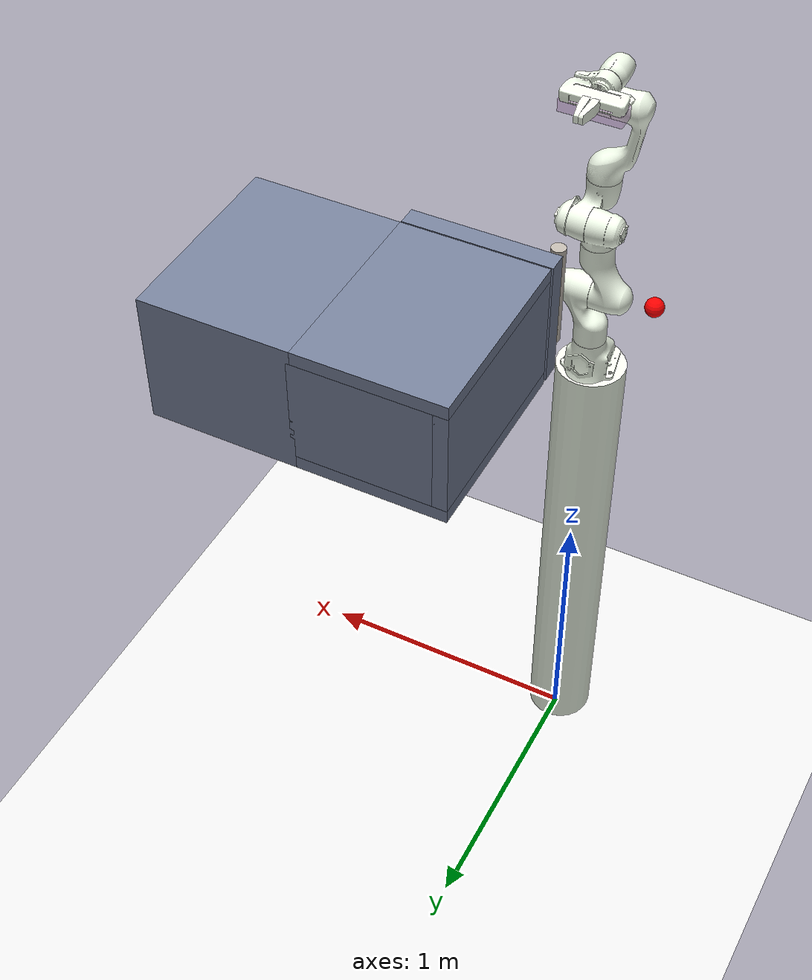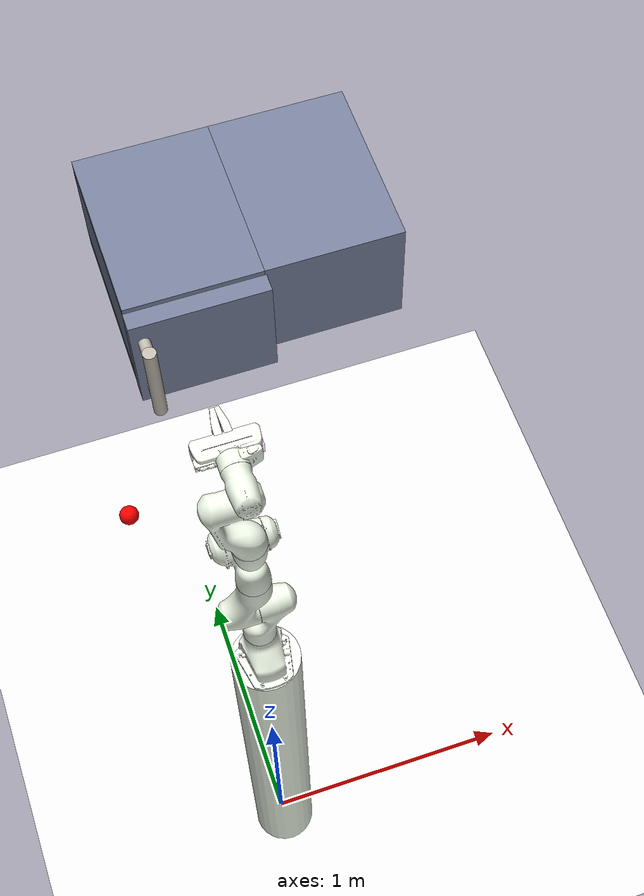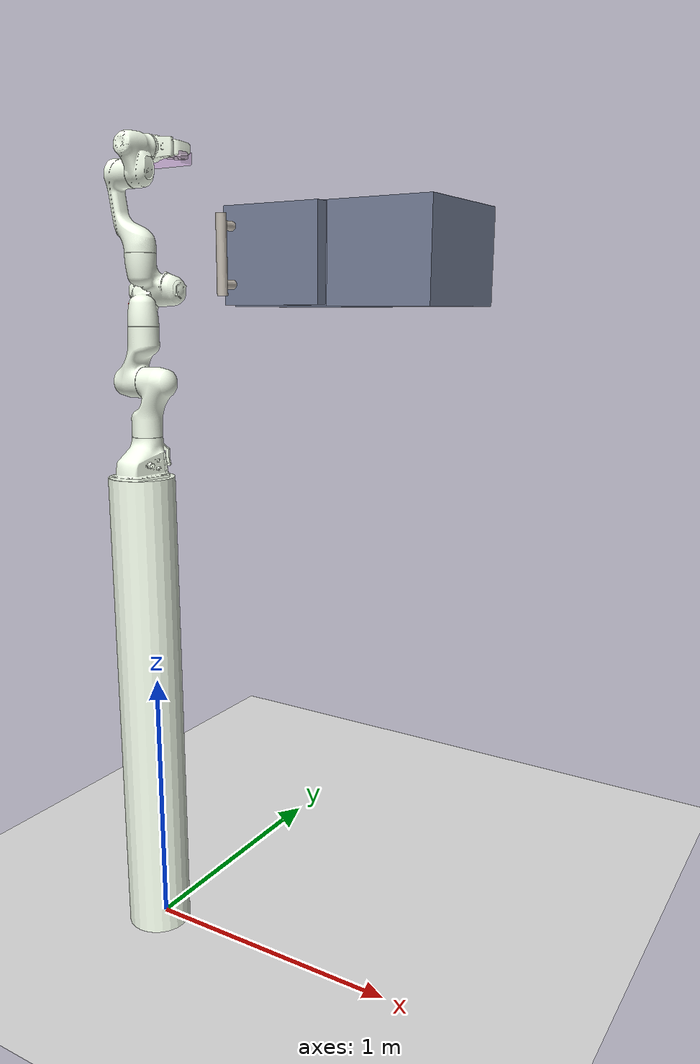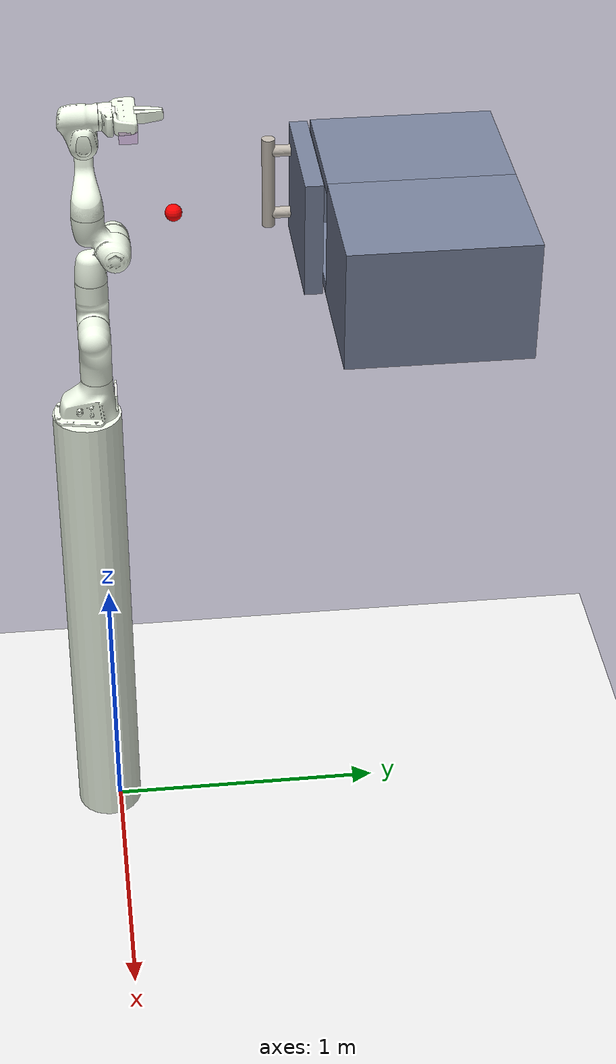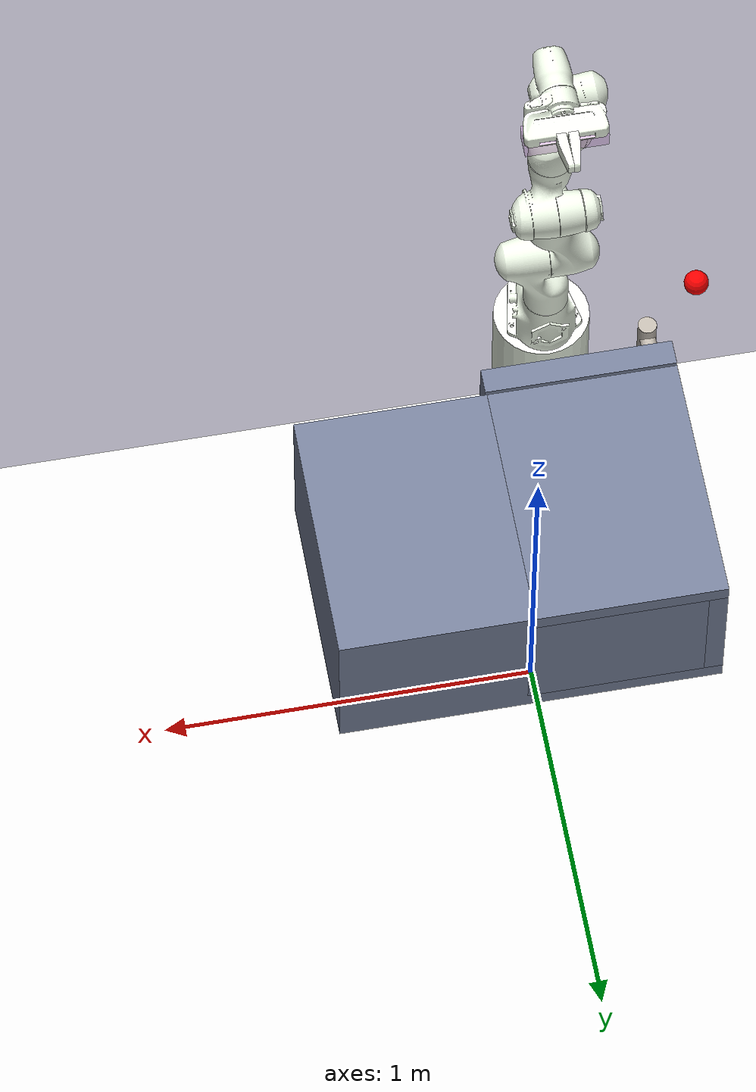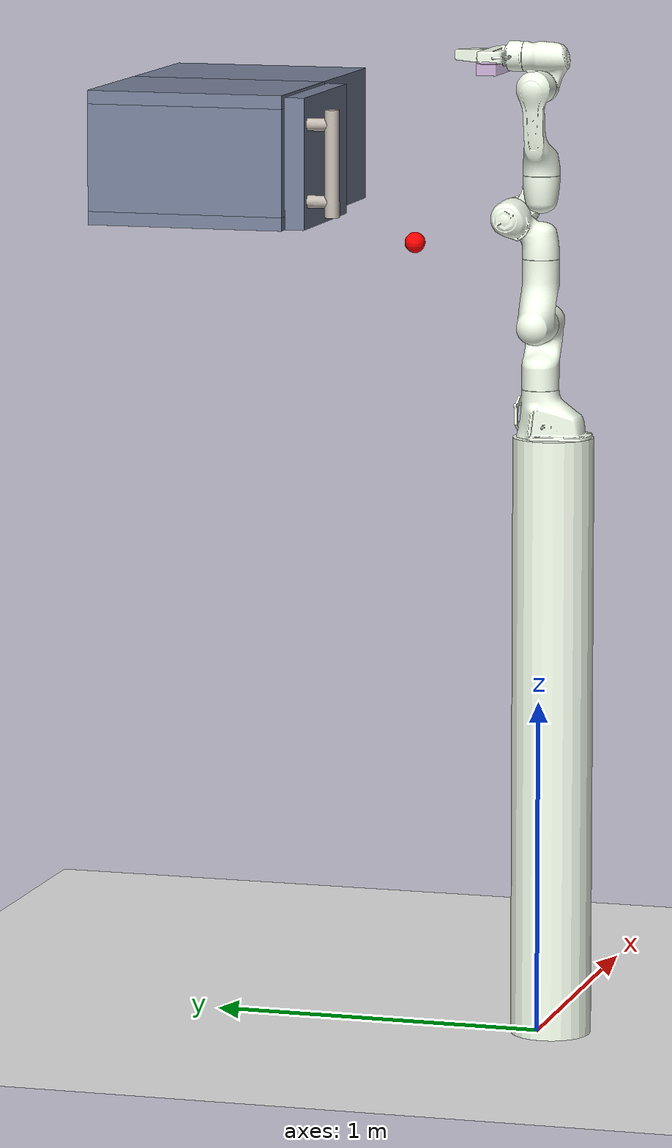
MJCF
<?xml version="1.0"?>
<mujoco model="franka_kitchen">
  <size njmax="1000" nconmax="1000"/>
  <include file="../../adept_models/scenes/basic_scene.xml"/>
  <include file="../../adept_models/franka/assets/assets.xml"/>
  <include file="../../adept_models/franka/assets/actuator0.xml"/>
  <include file="../../adept_models/kitchen/assets/slidecabinet_asset.xml"/>
  <visual>
    <global offwidth="2560" offheight="1920"/>
    <quality shadowsize="4096" offsamples="8"/>
    <map force="0.1" fogend="5"/>
  </visual>
  <compiler angle="radian" meshdir="../../adept_models/franka" texturedir="../../adept_models/franka"/>
  <compiler inertiafromgeom="auto" inertiagrouprange="3 5"/>
  <equality>
    <weld body1="vive_controller" body2="panda0_link7" solref="0.02 1" solimp=".4 .85 .1"/>
  </equality>
  <worldbody>
    <!-- Mocap -->
    <body name="vive_controller" mocap="true" pos="0 0 2.89" euler="-1.57 0 -.785">
      <geom type="box" group="2" pos="0 0 .142" size="0.02 0.10 0.03" contype="0" conaffinity="0" rgba=".9 .7 .95 0.5" euler="0 0 -.785"/>
      <geom type="box" group="1" pos="0 0 .142" size="0.02 0.10 0.03" contype="0" conaffinity="0" rgba=".9 .7 .95 0.5" euler="0 0 -.785"/>
    </body>
    <site name="target" pos="-0.3 0.3 2.4" size="0.03" rgba="1 0 0 1"/>
    <camera name="left_cap" pos="-1.2 -0.5 1.8" quat="0.78 0.49 -0.22 -0.32"/>
    <camera name="right_cap" pos="1.2 -0.5 1.8" quat="0.76 0.5 0.21 0.35"/>
    <!-- Robot -->
    <body pos="0. 0 1.8" euler="0 0 1.57">
      <geom type="cylinder" size=".120 .90" pos="-.04 0 -0.90" class="panda_viz"/>
      <include file="../../adept_models/franka/assets/chain0.xml"/>
    </body>
    <body name="desk" pos="-0.1 0.75 0">
      <body name="slidecabinet" pos="0.4 0.3 2.6">
        <include file="../../adept_models/kitchen/assets/slidecabinet_chain.xml"/>
      </body>
    </body>
  </worldbody>
  <keyframe>
    <key qpos="0.16 -1.76 1.84 -2.51 0.36 0.79 1.55 0.00 0.0 0.0"/>
  </keyframe>
</mujoco>

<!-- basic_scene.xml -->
<mujocoinclude>
  <asset>
    <texture name="skybox" type="skybox" builtin="gradient" rgb1=".08 .09 .10" rgb2="0 0 0" width="800" height="800" mark="random" markrgb=".8 .8 .8"/>
    <texture name="texplane" type="2d" height="1" width="1" file="../scenes/textures/white_marble_tile2.png"/>
    <material name="MatPlane" reflectance="0.05" texture="texplane" texrepeat="4 4" texuniform="true"/>
  </asset>
  <visual>
    <map fogstart="1.5" fogend="5" force="0.1" znear="0.1"/>
    <quality shadowsize="4096" offsamples="4"/>
  </visual>
  <worldbody>
    <light directional="true" diffuse=".3 .3 .3" specular="0.3 0.3 0.3" pos="-1 -1 1" dir="1 1 -1"/>
    <light directional="true" diffuse=".3 .3 .3" specular="0.3 0.3 0.3" pos="1 -1 1" dir="-1 1 -1"/>
    <light directional="true" diffuse=".3 .3 .3" specular="0.3 0.3 0.3" pos="0 1 1" dir="0 -1 -1"/>
    <geom name="floor" pos="0 0 0" size="5 5 .1" conaffinity="1" contype="1" type="plane" material="MatPlane" condim="3"/>
    <site name="xaxis" pos=".5 0 0" size=".005 .5" type="capsule" rgba="1 0 0 .25" euler="0 1.57 0" group="3"/>
    <site name="yaxis" pos="0 .5 0" size=".005 .5" type="capsule" rgba="0 1 0 .25" euler="1.57 0 0" group="3"/>
  </worldbody>
</mujocoinclude>

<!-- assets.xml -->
<mujocoinclude>
  <compiler angle="radian"/>
  <option timestep="0.002"/>
  <size nuser_actuator="5"/>
  <asset>
    <mesh name="link0_col" file="../franka/meshes/collision/link0.stl"/>
    <mesh name="link1_col" file="../franka/meshes/collision/link1.stl"/>
    <mesh name="link2_col" file="../franka/meshes/collision/link2.stl"/>
    <mesh name="link3_col" file="../franka/meshes/collision/link3.stl"/>
    <mesh name="link4_col" file="../franka/meshes/collision/link4.stl"/>
    <mesh name="link5_col" file="../franka/meshes/collision/link5.stl"/>
    <mesh name="link6_col" file="../franka/meshes/collision/link6.stl"/>
    <mesh name="link7_col" file="../franka/meshes/collision/link7.stl"/>
    <mesh name="hand_col" file="../franka/meshes/collision/hand.stl"/>
    <mesh name="finger_col" file="../franka/meshes/collision/finger.stl" scale="1.75 1.0 1.75"/>
    <mesh name="link0_viz" file="../franka/meshes/visual/link0.stl"/>
    <mesh name="link1_viz" file="../franka/meshes/visual/link1.stl"/>
    <mesh name="link2_viz" file="../franka/meshes/visual/link2.stl"/>
    <mesh name="link3_viz" file="../franka/meshes/visual/link3.stl"/>
    <mesh name="link4_viz" file="../franka/meshes/visual/link4.stl"/>
    <mesh name="link5_viz" file="../franka/meshes/visual/link5.stl"/>
    <mesh name="link6_viz" file="../franka/meshes/visual/link6.stl"/>
    <mesh name="link7_viz" file="../franka/meshes/visual/link7.stl"/>
    <mesh name="hand_viz" file="../franka/meshes/visual/hand.stl"/>
    <mesh name="finger_viz" file="../franka/meshes/collision/finger.stl" scale="1.75 1.0 1.75"/>
  </asset>
  <default>
    <default class="panda">
      <joint pos="0 0 0" axis="0 0 1" limited="true"/>
      <position forcelimited="true" ctrllimited="true" user="1002 40 2001 -0.005 0.005"/>
      <default class="panda_viz">
        <geom contype="0" conaffinity="0" group="0" type="mesh" rgba=".95 .99 .92 1" mass="0"/>
      </default>
      <default class="panda_col">
        <geom contype="1" conaffinity="1" group="3" type="mesh" rgba=".5 .6 .7 1"/>
      </default>
      <default class="panda_arm">
        <joint damping="100"/>
      </default>
      <default class="panda_forearm">
        <joint damping="10"/>
      </default>
      <default class="panda_finger">
        <joint damping="100" armature="5"/>
        <geom friction="1 0.5 0.0001" solref="0.01 1" solimp="0.8 0.9 0.001" margin="0.001" user="0" rgba="0.5 0.6 0.7 .4" contype="1" conaffinity="0" condim="6" group="3"/>
        <position user="1002 40 2001 -0.0001 0.0001"/>
      </default>
    </default>
    <default class="panda_overlay">
      <joint limited="false" damping="1000" armature="1" frictionloss="10"/>
      <geom contype="0" conaffinity="0" group="2" type="mesh" rgba=".42 0.42 0.42 .5"/>
    </default>
  </default>
</mujocoinclude>

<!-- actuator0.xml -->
<mujocoinclude>
  <actuator>
    <!-- velocity="2.1750" -->
    <!-- velocity="2.1750" -->
    <!-- velocity="2.1750" -->
    <!-- velocity="2.1750" -->
    <!-- velocity="2.6100" -->
    <!-- velocity="2.6100" -->
    <!-- velocity="2.9671" -->
    <position name="r_gripper_finger_joint" joint="panda0_finger_joint1" class="panda_finger" kp="500" forcerange="-70 70" ctrlrange="0 0.04"/>
    <!-- velocity=".2" -->
    <position name="l_gripper_finger_joint" joint="panda0_finger_joint2" class="panda_finger" kp="500" forcerange="-70 70" ctrlrange="0 0.04"/>
    <!-- velocity=".2" -->
  </actuator>
</mujocoinclude>

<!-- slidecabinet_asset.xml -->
<mujocoinclude>
  <compiler inertiafromgeom="auto" inertiagrouprange="4 4" angle="radian"/>
  <asset>
    <texture name="T_slide_metal" type="cube" height="1" width="1" file="../kitchen/textures/metal1.png"/>
    <material name="M_slide_metal" texture="T_slide_metal" texrepeat="3 3" reflectance="0.7" shininess=".4" texuniform="false"/>
    <material name="M_slide_blue" rgba=".46 .5 .6 1" reflectance="0.7" shininess=".4"/>
    <material name="slide_collision_blue" rgba="0.3 0.3 1.0 0.5" shininess="0" specular="0"/>
  </asset>
  <default>
    <default class="slidecabinet">
      <joint damping="2" frictionloss="2" armature=".01" limited="true"/>
      <geom conaffinity="0" contype="0" group="1" material="M_slide_blue" type="mesh"/>
      <default class="slide_collision">
        <geom conaffinity="1" condim="3" contype="0" group="4" margin="0.001" material="slide_collision_blue"/>
      </default>
    </default>
  </default>
</mujocoinclude>

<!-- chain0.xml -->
<!-- Robot limits pulled from https://frankaemika.github.io/docs/control_parameters.html#constants -->
<mujocoinclude>
  <body name="panda0_link0" childclass="panda">
    <geom class="panda_viz" mesh="link0_viz"/>
    <geom class="panda_col" mesh="link0_col" mass="2.91242"/>
    <body name="panda0_link1" pos="0 0 0.333">
      <joint name="panda0_joint1" range="-2.8973 2.8973" class="panda_arm"/>
      <geom class="panda_viz" mesh="link1_viz"/>
      <geom class="panda_col" mesh="link1_col" mass="2.7063"/>
      <body name="panda0_link2" pos="0 0 0" quat="0.707107 -0.707107 0 0">
        <joint name="panda0_joint2" range="-1.7628 1.7628" class="panda_arm"/>
        <geom class="panda_viz" mesh="link2_viz"/>
        <geom class="panda_col" mesh="link2_col" mass="2.73046"/>
        <body name="panda0_link3" pos="0 -0.316 0" quat="0.707107 0.707107 0 0">
          <joint name="panda0_joint3" range="-2.8973 2.8973" class="panda_arm"/>
          <geom class="panda_viz" mesh="link3_viz"/>
          <geom class="panda_col" mesh="link3_col" mass="2.04104"/>
          <body name="panda0_link4" pos="0.0825 0 0" quat="0.707107 0.707107 0 0">
            <joint name="panda0_joint4" range="-3.0718 -0.4" class="panda_arm"/>
            <geom class="panda_viz" mesh="link4_viz"/>
            <geom class="panda_col" mesh="link4_col" mass="2.08129"/>
            <body name="panda0_link5" pos="-0.0825 0.384 0" quat="0.707107 -0.707107 0 0">
              <joint name="panda0_joint5" range="-2.8973 2.8973" class="panda_forearm"/>
              <geom class="panda_viz" mesh="link5_viz"/>
              <geom class="panda_col" mesh="link5_col" mass="3.00049"/>
              <body name="panda0_link6" pos="0 0 0" euler="1.57 0 1.57">
                <joint name="panda0_joint6" range="-1.6573 2.1127" class="panda_forearm"/>
                <geom class="panda_viz" mesh="link6_viz"/>
                <geom class="panda_col" mesh="link6_col" mass="1.3235"/>
                <body name="panda0_link7" pos="0.088 0 0" euler="1.57 0 0.7854">
                  <joint name="panda0_joint7" range="-2.8973 2.8973" class="panda_forearm"/>
                  <geom class="panda_viz" mesh="link7_viz"/>
                  <geom class="panda_col" mesh="link7_col" mass="0.2"/>
                  <geom pos="0 0 0.107" quat="0.92388 0 0 -0.382683" class="panda_viz" mesh="hand_viz"/>
                  <geom pos="0 0 0.107" quat="0.92388 0 0 -0.382683" class="panda_col" mesh="hand_col" mass="0.81909"/>
                  <site name="end_effector" pos="0 0 .210" size="0.01" euler="0 0 -0.785398"/>
                  <body name="panda0_leftfinger" pos="0 0 0.1654" quat="0.92388 0 0 -0.382683" childclass="panda_finger">
                    <inertial pos="-1.57863e-05 0.0118731 0.0434103" quat="0.705868 0.0310348 -0.0314925 0.706962" mass="0.0927059" diaginertia="6.57134e-05 6.09611e-05 1.09932e-05"/>
                    <joint name="panda0_finger_joint1" axis="0 1 0" type="slide" range="0 0.04" class="panda_finger"/>
                    <geom class="panda_viz" mesh="finger_viz"/>
                    <geom size="0.0070" fromto=".009 .006 .0875   -.009 .009 .0875" type="capsule"/>
                    <geom size="0.0070" fromto=".009 .009 .0875   -.009 .006 .0875" type="capsule"/>
                    <geom size="0.0075" fromto=".009 .007 .0775   -.009 .010 .0775" type="capsule"/>
                    <geom size="0.0075" fromto=".009 .010 .0775   -.009 .007 .0775" type="capsule"/>
                    <geom size="0.0082" fromto=".009 .008 .0675   -.009 .011 .0675" type="capsule"/>
                    <geom size="0.0082" fromto=".009 .011 .0675   -.009 .008 .0675" type="capsule"/>
                    <geom size="0.0090" fromto=".009 .009 .0575   -.009 .012 .0575" type="capsule"/>
                    <geom size="0.0090" fromto=".009 .012 .0575   -.009 .009 .0575" type="capsule"/>
                    <geom size="0.0100" fromto=".009 .0105 .0475   -.009 .0135 .0475" type="capsule"/>
                    <geom size="0.0100" fromto=".009 .0135 .0475   -.009 .0105 .0475" type="capsule"/>
                    <geom size="0.0110" fromto=".009 .012 .035   -.009 .015 .035" type="capsule"/>
                    <geom size="0.0110" fromto=".009 .015 .035   -.009 .012 .035" type="capsule"/>
                    <geom size="0.0185 0.0120 0.0175" pos="0 0.014 0.015" type="box" euler=".03 0 0"/>
                  </body>
                  <body name="panda0_rightfinger" pos="0 0 0.1654" quat="0.92388 0 0 -0.382683" childclass="panda_finger">
                    <inertial pos="1.57863e-05 -0.0118731 0.0434103" quat="0.705868 -0.0310348 0.0314925 0.706962" mass="0.0927059" diaginertia="6.57134e-05 6.09611e-05 1.09932e-05"/>
                    <joint name="panda0_finger_joint2" axis="0 -1 0" type="slide" range="0 0.04" class="panda_finger"/>
                    <geom quat="0 0 0 1" class="panda_viz" mesh="finger_viz"/>
                    <geom size="0.0070" fromto=".009 -.006 .0875   -.009 -.009 .0875" type="capsule"/>
                    <geom size="0.0070" fromto=".009 -.009 .0875   -.009 -.006 .0875" type="capsule"/>
                    <geom size="0.0075" fromto=".009 -.007 .0775   -.009 -.010 .0775" type="capsule"/>
                    <geom size="0.0075" fromto=".009 -.010 .0775   -.009 -.007 .0775" type="capsule"/>
                    <geom size="0.0082" fromto=".009 -.008 .0675   -.009 -.011 .0675" type="capsule"/>
                    <geom size="0.0082" fromto=".009 -.011 .0675   -.009 -.008 .0675" type="capsule"/>
                    <geom size="0.0090" fromto=".009 -.009 .0575   -.009 -.012 .0575" type="capsule"/>
                    <geom size="0.0090" fromto=".009 -.012 .0575   -.009 -.009 .0575" type="capsule"/>
                    <geom size="0.0100" fromto=".009 -.0105 .0475   -.009 -.0135 .0475" type="capsule"/>
                    <geom size="0.0100" fromto=".009 -.0135 .0475   -.009 -.0105 .0475" type="capsule"/>
                    <geom size="0.0110" fromto=".009 -.012 .035   -.009 -.015 .035" type="capsule"/>
                    <geom size="0.0110" fromto=".009 -.015 .035   -.009 -.012 .035" type="capsule"/>
                    <geom size="0.0185 0.0120 0.0175" pos="0 -.014 0.015" type="box" euler="-.03 0 0"/>
                  </body>
                </body>
              </body>
            </body>
          </body>
        </body>
      </body>
    </body>
  </body>
</mujocoinclude>

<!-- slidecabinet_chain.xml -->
<mujocoinclude>
  <body name="slide" childclass="slidecabinet">
    <geom pos="-0.225 0 -0.18" size="0.223 0.3 0.02" type="box"/>
    <geom pos="0.224 0 0" size="0.226 0.3 0.2" type="box"/>
    <geom pos="-0.225 0 0.18" size="0.223 0.3 0.02" type="box"/>
    <geom pos="-0.426 0 0" size="0.022 0.3 0.16" type="box"/>
    <geom pos="-0.2 0.276 0.0" size="0.21 0.024 0.16" type="box"/>
    <geom class="slide_collision" pos="-0.225 0 -0.18" size="0.223 0.3 0.02" type="box" mass=".2"/>
    <geom class="slide_collision" pos="0.224 0 0" size="0.226 0.3 0.2" type="box" mass="1"/>
    <geom class="slide_collision" pos="-0.225 0 0.18" size="0.223 0.3 0.02" type="box" mass=".2"/>
    <geom class="slide_collision" pos="-0.426 0 0" size="0.022 0.3 0.16" type="box" mass=".2"/>
    <geom class="slide_collision" pos="-0.2 0.276 0" size="0.2 0.024 0.16" type="box" mass=".2"/>
    <body name="slidelink" pos="-0.225 -0.32 0">
      <joint name="slidedoor_joint" axis="1 0 0" type="slide" range="0 .44"/>
      <geom material="M_slide_metal" euler="1.57 0 0" pos="-0.183 -0.06 -0.114" size="0.019 0.053 0.019" type="cylinder"/>
      <geom material="M_slide_metal" euler="1.57 0 0" pos="-0.183 -0.06 0.114" size="0.019 0.053 0.019" type="cylinder"/>
      <geom material="M_slide_metal" pos="-0.183 -0.123 0" size="0.022 0.159" type="cylinder"/>
      <geom pos="0 -.02 0" size="0.225 0.03 0.195" type="box"/>
      <geom class="slide_collision" pos="0 -.02 0" size="0.225 0.03 0.195" type="box" mass=".2"/>
      <geom class="slide_collision" euler="1.57 0 0" pos="-0.183 -0.06 -0.114" size="0.019 0.053 0.019" type="cylinder" mass=".02"/>
      <geom class="slide_collision" euler="1.57 0 0" pos="-0.183 -0.06 0.114" size="0.019 0.053 0.019" type="cylinder" mass=".02"/>
      <geom class="slide_collision" pos="-0.183 -0.123 0" size="0.022 0.159" type="cylinder" mass=".1"/>
      <site type="sphere" name="slide_site" pos="-0.183 -0.123 0" size=".01" group="3"/>
    </body>
  </body>
</mujocoinclude>
